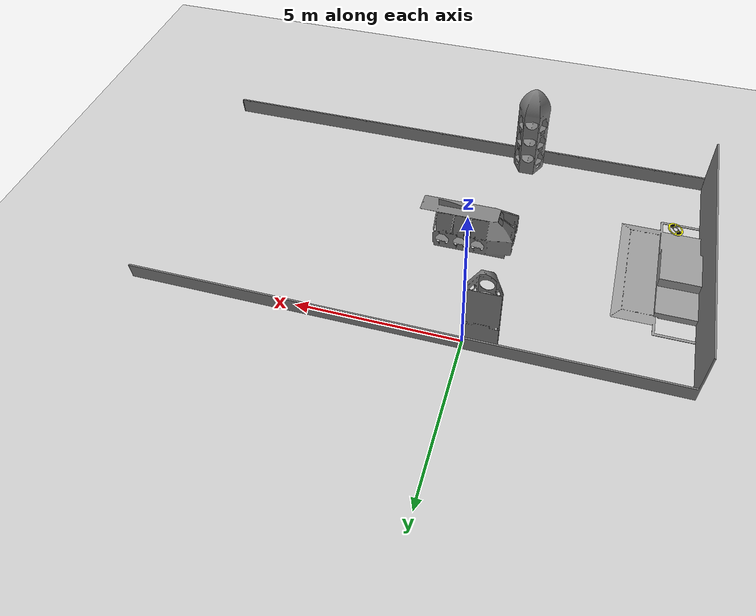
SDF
<sdf version="1.7">
 <world name="default">
  <light name="sun" type="directional">
   <pose>0 0 10 0 -0 0</pose>
   <diffuse>0.8 0.8 0.8 1</diffuse>
   <specular>0.2 0.2 0.2 1</specular>
   <attenuation>
    <range>1000</range>
    <constant>0.9</constant>
    <linear>0.01</linear>
    <quadratic>0.001</quadratic>
   </attenuation>
   <direction>-0.5 0.1 -0.9</direction>
   <spot><inner_angle>0</inner_angle><outer_angle>0</outer_angle><falloff>0</falloff></spot>
  </light>
  <model name="ground_plane">
   <static>1</static>
   <link name="link">
    <collision name="collision">
     <geometry><plane><normal>0 0 1</normal><size>100 100</size></plane></geometry>
     <surface>
      <contact><collide_bitmask>65535</collide_bitmask></contact>
      <friction><ode><mu>100</mu><mu2>50</mu2></ode></friction>
     </surface>
    </collision>
    <visual name="visual">
     <cast_shadows>0</cast_shadows>
     <geometry><plane><normal>0 0 1</normal><size>100 100</size></plane></geometry>
     <material>
      <script><uri>file://media/materials/scripts/gazebo.material</uri><name>Gazebo/Grey</name></script>
     </material>
    </visual>
   </link>
  </model>
  <model name="Platform2">
   <pose>-3.9286 -3.8364 0.000104 -3.14 -2e-06 -0.000627</pose>
   <static>1</static>
   <link name="Platform2">
    <pose>-1.24298 2e-05 -0.189223 -1.5708 -0 3.14159</pose>
    <must_be_base_link>1</must_be_base_link>
    <velocity_decay><linear>0</linear><angular>0</angular></velocity_decay>
    <inertial>
     <mass>129.621</mass>
     <inertia>
      <ixx>0.317774</ixx>
      <ixy>2.23656</ixy>
      <ixz>0.000291577</ixz>
      <iyy>15.7413</iyy>
      <iyz>4.14277e-05</iyz>
      <izz>16.0591</izz>
     </inertia>
    </inertial>
    <collision name="Platform_collision">
     <pose>0.507913 -0.189223 0.384851 0 -0 0</pose>
     <geometry><mesh><scale>1 1 1</scale><uri>model://Platform2/meshes/Platform_col.STL</uri></mesh></geometry>
     <surface><friction><ode><mu>1</mu><mu2>1</mu2></ode></friction></surface>
    </collision>
    <visual name="Platform_visual">
     <pose>0.507913 -0.189223 0.384851 0 -0 0</pose>
     <material><ambient>0.6 0.6 0.6 1</ambient><diffuse>0.6 0.6 0.6 1</diffuse></material>
     <geometry><mesh><scale>1 1 1</scale><uri>model://Platform2/meshes/Platform.STL</uri></mesh></geometry>
    </visual>
   </link>
  </model>
  <model name="2019-Field-3">
   <pose>13.2 -3.861 4.5797 1.57 -0 0</pose>
   <static>1</static>
   <link name="All">
    <pose>-11.2776 -4.572 -0 0 -0 0</pose>
    <must_be_base_link>1</must_be_base_link>
    <velocity_decay><linear>0</linear><angular>0</angular></velocity_decay>
    <inertial>
     <mass>1000</mass>
     <pose>1000 100 100 0 -0 0</pose>
     <inertia><ixx>100</ixx><ixy>100</ixy><ixz>100</ixz><iyy>100</iyy><iyz>100</iyz><izz>100</izz></inertia>
    </inertial>
    <collision name="All_collision">
     <geometry><mesh><scale>1 1 1</scale><uri>model://2019-Field-3/meshes/All_col.STL</uri></mesh></geometry>
     <surface><friction><ode><mu>1</mu><mu2>1</mu2></ode></friction></surface>
    </collision>
    <visual name="All_visual">
     <material><ambient>0.5 0.5 0.5 1</ambient><diffuse>0.5 0.5 0.5 1</diffuse></material>
     <geometry><mesh><scale>1 1 1</scale><uri>model://2019-Field-3/meshes/All.STL</uri></mesh></geometry>
    </visual>
   </link>
  </model>
  <gravity>0 0 -9.8</gravity>
  <magnetic_field>6e-06 2.3e-05 -4.2e-05</magnetic_field>
  <atmosphere type="adiabatic"/>
  <physics type="ode">
   <max_step_size>0.001</max_step_size>
   <real_time_factor>1</real_time_factor>
   <real_time_update_rate>1000</real_time_update_rate>
  </physics>
  <scene><ambient>0.4 0.4 0.4 1</ambient><background>0.7 0.7 0.7 1</background><shadows>1</shadows></scene>
  <spherical_coordinates>
   <surface_model>EARTH_WGS84</surface_model>
   <latitude_deg>0</latitude_deg>
   <longitude_deg>0</longitude_deg>
   <elevation>0</elevation>
   <heading_deg>0</heading_deg>
  </spherical_coordinates>
  <model name="HatchPlate">
   <pose>-5.44295 -5.03551 0.864861 0.021942 -0.246755 -0.040213</pose>
   <link name="SolidBody">
    <pose>1.5e-05 -7e-06 -0.006191 1.5708 0 0.785398</pose>
    <must_be_base_link>1</must_be_base_link>
    <velocity_decay><linear>0</linear><angular>0</angular></velocity_decay>
    <inertial>
     <mass>0.336287</mass>
     <inertia><ixx>0.1</ixx><ixy>0</ixy><ixz>0</ixz><iyy>0.1</iyy><iyz>0</iyz><izz>0.1</izz></inertia>
    </inertial>
    <collision name="SolidBody_collision">
     <pose>0 -0 8e-06 0 -0 0</pose>
     <geometry><mesh><scale>1 1 1</scale><uri>model://HatchPlate/meshes/SolidBody_col.STL</uri></mesh></geometry>
     <surface>
      <contact><ode><max_vel>0</max_vel><kp>1e+06</kp><kd>10</kd></ode></contact>
      <friction><ode><mu>1</mu><mu2>1</mu2></ode></friction>
     </surface>
    </collision>
    <visual name="SolidBody_visual">
     <pose>0 -0 8e-06 0 -0 0</pose>
     <material><ambient>1 1 1 1</ambient><diffuse>1 1 1 1</diffuse></material>
     <geometry><mesh><scale>1 1 1</scale><uri>model://HatchPlate/meshes/SolidBody.STL</uri></mesh></geometry>
    </visual>
   </link>
   <link name="Yellow">
    <pose>0 0 0 1.5708 0 0.785398</pose>
    <velocity_decay><linear>0</linear><angular>0</angular></velocity_decay>
    <inertial>
     <mass>0.0378969</mass>
     <inertia><ixx>0</ixx><ixy>0</ixy><ixz>0</ixz><iyy>0</iyy><iyz>0</iyz><izz>0</izz></inertia>
    </inertial>
    <visual name="Yellow_visual">
     <pose>-0 0.002631 -0 0 -0 0</pose>
     <material><ambient>1 1 0 1</ambient><diffuse>1 1 0 1</diffuse></material>
     <geometry><mesh><scale>1 1 1</scale><uri>model://HatchPlate/meshes/Yellow.STL</uri></mesh></geometry>
    </visual>
   </link>
   <joint name="SolidBody-Yellow" type="fixed"><parent>SolidBody</parent><child>Yellow</child></joint>
   <link name="Black">
    <pose>0 0 0 1.57 -0 0.785</pose>
    <velocity_decay><linear>0</linear><angular>0</angular></velocity_decay>
    <inertial>
     <mass>0.014228</mass>
     <pose>-0 -0.002631 0.074282 0 -0 0</pose>
     <inertia><ixx>0</ixx><ixy>0</ixy><ixz>0</ixz><iyy>0</iyy><iyz>0</iyz><izz>0</izz></inertia>
    </inertial>
    <visual name="Black_visual">
     <material><ambient>0 0 0 1</ambient><diffuse>0 0 0 1</diffuse></material>
     <geometry><mesh><scale>1 1 1</scale><uri>model://HatchPlate/meshes/Black_col.STL</uri></mesh></geometry>
    </visual>
   </link>
   <joint name="SolidBody-Black" type="fixed">
    <parent>SolidBody</parent>
    <child>Black</child>
    <pose>0 -0.002631 0 0 -0 0</pose>
   </joint>
  </model>
 </world>
</sdf>
